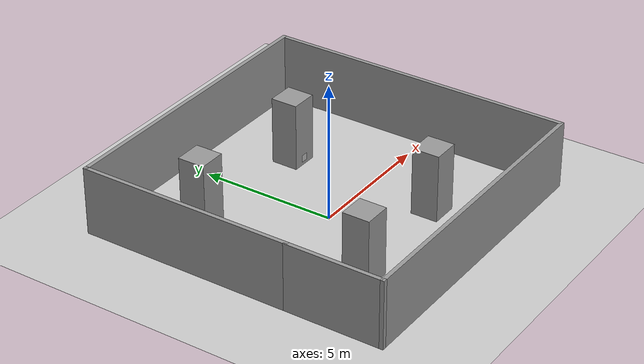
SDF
<sdf version="1.7">
 <world name="default">
  <light name="sun" type="directional">
   <pose>0 0 10 0 -0 0</pose>
   <diffuse>0.8 0.8 0.8 1</diffuse>
   <specular>0.2 0.2 0.2 1</specular>
   <attenuation>
    <range>1000</range>
    <constant>0.9</constant>
    <linear>0.01</linear>
    <quadratic>0.001</quadratic>
   </attenuation>
   <direction>-0.5 0.1 -0.9</direction>
   <spot><inner_angle>0</inner_angle><outer_angle>0</outer_angle><falloff>0</falloff></spot>
  </light>
  <model name="ground_plane">
   <static>1</static>
   <link name="link">
    <collision name="collision">
     <geometry><plane><normal>0 0 1</normal><size>100 100</size></plane></geometry>
     <surface><friction><ode><mu>100</mu><mu2>50</mu2></ode></friction></surface>
    </collision>
    <visual name="visual">
     <cast_shadows>0</cast_shadows>
     <geometry><plane><normal>0 0 1</normal><size>100 100</size></plane></geometry>
     <material>
      <script><uri>file://media/materials/scripts/gazebo.material</uri><name>Gazebo/Grey</name></script>
     </material>
    </visual>
   </link>
  </model>
  <gravity>0 0 -9.8</gravity>
  <magnetic_field>6e-06 2.3e-05 -4.2e-05</magnetic_field>
  <atmosphere type="adiabatic"/>
  <physics type="ode">
   <max_step_size>0.001</max_step_size>
   <real_time_factor>1</real_time_factor>
   <real_time_update_rate>1000</real_time_update_rate>
  </physics>
  <scene><ambient>0.4 0.4 0.4 1</ambient><background>0.7 0.7 0.7 1</background><shadows>1</shadows></scene>
  <audio><device>default</device></audio>
  <spherical_coordinates>
   <surface_model>EARTH_WGS84</surface_model>
   <latitude_deg>0</latitude_deg>
   <longitude_deg>0</longitude_deg>
   <elevation>0</elevation>
   <heading_deg>0</heading_deg>
  </spherical_coordinates>
  <model name="walls">
   <pose>0.456221 0.324952 0 0 -0 0</pose>
   <link name="Wall_0">
    <collision name="Wall_0_Collision">
     <geometry><box><size>8 0.15 2.5</size></box></geometry>
     <pose>0 0 1.25 0 -0 0</pose>
    </collision>
    <visual name="Wall_0_Visual">
     <pose>0 0 1.25 0 -0 0</pose>
     <geometry><box><size>8 0.15 2.5</size></box></geometry>
     <material>
      <script><uri>file://media/materials/scripts/gazebo.material</uri><name>Gazebo/Grey</name></script>
      <ambient>1 1 1 1</ambient>
     </material>
     <meta><layer>0</layer></meta>
    </visual>
    <pose>-5.55 1.75 0 0 -0 1.5708</pose>
   </link>
   <link name="Wall_1">
    <collision name="Wall_1_Collision">
     <geometry><box><size>11.25 0.15 2.5</size></box></geometry>
     <pose>0 0 1.25 0 -0 0</pose>
    </collision>
    <visual name="Wall_1_Visual">
     <pose>0 0 1.25 0 -0 0</pose>
     <geometry><box><size>11.25 0.15 2.5</size></box></geometry>
     <material>
      <script><uri>file://media/materials/scripts/gazebo.material</uri><name>Gazebo/Grey</name></script>
      <ambient>1 1 1 1</ambient>
     </material>
     <meta><layer>0</layer></meta>
    </visual>
    <pose>-0 5.675 0 0 -0 0</pose>
   </link>
   <link name="Wall_2">
    <collision name="Wall_2_Collision">
     <geometry><box><size>11.5 0.15 2.5</size></box></geometry>
     <pose>0 0 1.25 0 -0 0</pose>
    </collision>
    <visual name="Wall_2_Visual">
     <pose>0 0 1.25 0 -0 0</pose>
     <geometry><box><size>11.5 0.15 2.5</size></box></geometry>
     <material>
      <script><uri>file://media/materials/scripts/gazebo.material</uri><name>Gazebo/Grey</name></script>
      <ambient>1 1 1 1</ambient>
     </material>
     <meta><layer>0</layer></meta>
    </visual>
    <pose>5.55 -0 0 0 -0 -1.5708</pose>
   </link>
   <link name="Wall_3">
    <collision name="Wall_3_Collision">
     <geometry><box><size>11.25 0.15 2.5</size></box></geometry>
     <pose>0 0 1.25 0 -0 0</pose>
    </collision>
    <visual name="Wall_3_Visual">
     <pose>0 0 1.25 0 -0 0</pose>
     <geometry><box><size>11.25 0.15 2.5</size></box></geometry>
     <material>
      <script><uri>file://media/materials/scripts/gazebo.material</uri><name>Gazebo/Grey</name></script>
      <ambient>1 1 1 1</ambient>
     </material>
     <meta><layer>0</layer></meta>
    </visual>
    <pose>-0 -5.675 0 0 -0 3.14159</pose>
   </link>
   <link name="Wall_4">
    <collision name="Wall_4_Collision">
     <geometry><box><size>3.65 0.15 2.5</size></box></geometry>
     <pose>0 0 1.25 0 -0 0</pose>
    </collision>
    <visual name="Wall_4_Visual">
     <pose>0 0 1.25 0 -0 0</pose>
     <geometry><box><size>3.65 0.15 2.5</size></box></geometry>
     <material>
      <script><uri>file://media/materials/scripts/gazebo.material</uri><name>Gazebo/Grey</name></script>
      <ambient>1 1 1 1</ambient>
     </material>
     <meta><layer>0</layer></meta>
    </visual>
    <pose>-5.55 -3.925 0 0 -0 1.5708</pose>
   </link>
   <static>1</static>
  </model>
  <model name="unit_box">
   <pose>-2.46315 3.40168 1.25301 2e-06 -2e-06 0.005575</pose>
   <link name="link">
    <inertial>
     <mass>1</mass>
     <inertia>
      <ixx>0.166667</ixx>
      <ixy>0</ixy>
      <ixz>0</ixz>
      <iyy>0.166667</iyy>
      <iyz>0</iyz>
      <izz>0.166667</izz>
     </inertia>
    </inertial>
    <collision name="collision"><geometry><box><size>1 1 2.50603</size></box></geometry></collision>
    <visual name="visual">
     <geometry><box><size>1 1 2.50603</size></box></geometry>
     <material>
      <script><name>Gazebo/Grey</name><uri>file://media/materials/scripts/gazebo.material</uri></script>
     </material>
    </visual>
   </link>
  </model>
  <model name="unit_box_clone">
   <pose>2.44949 3.16416 1.25301 0 0 -0.008098</pose>
   <link name="link">
    <inertial>
     <mass>1</mass>
     <inertia>
      <ixx>0.166667</ixx>
      <ixy>0</ixy>
      <ixz>0</ixz>
      <iyy>0.166667</iyy>
      <iyz>0</iyz>
      <izz>0.166667</izz>
     </inertia>
    </inertial>
    <collision name="collision"><geometry><box><size>1 1 2.50603</size></box></geometry></collision>
    <visual name="visual">
     <geometry><box><size>1 1 2.50603</size></box></geometry>
     <material>
      <script><name>Gazebo/Grey</name><uri>file://media/materials/scripts/gazebo.material</uri></script>
     </material>
    </visual>
   </link>
  </model>
  <model name="unit_box_clone_0">
   <pose>2.29249 -2.59658 1.25301 1e-06 -1e-06 0.003052</pose>
   <link name="link">
    <inertial>
     <mass>1</mass>
     <inertia>
      <ixx>0.166667</ixx>
      <ixy>0</ixy>
      <ixz>0</ixz>
      <iyy>0.166667</iyy>
      <iyz>0</iyz>
      <izz>0.166667</izz>
     </inertia>
    </inertial>
    <collision name="collision"><geometry><box><size>1 1 2.50603</size></box></geometry></collision>
    <visual name="visual">
     <geometry><box><size>1 1 2.50603</size></box></geometry>
     <material>
      <script><name>Gazebo/Grey</name><uri>file://media/materials/scripts/gazebo.material</uri></script>
     </material>
    </visual>
   </link>
  </model>
  <model name="unit_box_clone_1">
   <pose>-2.22731 -2.82343 1.25301 -1e-06 -1e-06 -0.003598</pose>
   <link name="link">
    <inertial>
     <mass>1</mass>
     <inertia>
      <ixx>0.166667</ixx>
      <ixy>0</ixy>
      <ixz>0</ixz>
      <iyy>0.166667</iyy>
      <iyz>0</iyz>
      <izz>0.166667</izz>
     </inertia>
    </inertial>
    <collision name="collision"><geometry><box><size>1 1 2.50603</size></box></geometry></collision>
    <visual name="visual">
     <geometry><box><size>1 1 2.50603</size></box></geometry>
     <material>
      <script><name>Gazebo/Grey</name><uri>file://media/materials/scripts/gazebo.material</uri></script>
     </material>
    </visual>
   </link>
  </model>
  <model name="aruco_marker_0">
   <static>1</static>
   <link name="link">
    <inertial>
     <mass>0.001</mass>
     <inertia>
      <ixx>3.75e-06</ixx>
      <ixy>0</ixy>
      <ixz>0</ixz>
      <iyy>1.875e-06</iyy>
      <iyz>0</iyz>
      <izz>1.875e-06</izz>
     </inertia>
    </inertial>
    <visual name="front_visual">
     <pose>5e-05 0 0 0 -0 0</pose>
     <geometry><box><size>0.000174138 0.263845 0.263845</size></box></geometry>
     <material>
      <script>
       <uri>model://aruco_marker_0/materials/scripts</uri>
       <uri>model://aruco_marker_0/materials/textures</uri>
       <name>aruco_marker_0</name>
      </script>
     </material>
    </visual>
    <visual name="rear_visual">
     <pose>-5e-05 0 0 0 -0 0</pose>
     <geometry><box><size>0.000174138 0.263845 0.263845</size></box></geometry>
    </visual>
    <collision name="collision">
     <geometry><box><size>0.000174138 0.263845 0.263845</size></box></geometry>
    </collision>
   </link>
   <pose>-4.99343 0.048614 0.238247 8.9e-05 -0.025179 -0.004529</pose>
  </model>
  <model name="aruco_marker_1">
   <static>1</static>
   <link name="link">
    <inertial>
     <mass>0.001</mass>
     <inertia>
      <ixx>3.75e-06</ixx>
      <ixy>0</ixy>
      <ixz>0</ixz>
      <iyy>1.875e-06</iyy>
      <iyz>0</iyz>
      <izz>1.875e-06</izz>
     </inertia>
    </inertial>
    <visual name="front_visual">
     <pose>5e-05 0 0 0 -0 0</pose>
     <geometry><box><size>0.000173806 0.260709 0.260709</size></box></geometry>
     <material>
      <script>
       <uri>model://aruco_marker_1/materials/scripts</uri>
       <uri>model://aruco_marker_1/materials/textures</uri>
       <name>aruco_marker_1</name>
      </script>
     </material>
    </visual>
    <visual name="rear_visual">
     <pose>-5e-05 0 0 0 -0 0</pose>
     <geometry><box><size>0.000173806 0.260709 0.260709</size></box></geometry>
    </visual>
    <collision name="collision">
     <geometry><box><size>0.000173806 0.260709 0.260709</size></box></geometry>
    </collision>
   </link>
   <pose>2.42955 2.65823 0.259882 0.006729 -0.003657 -1.59007</pose>
  </model>
  <model name="aruco_marker_2">
   <static>1</static>
   <link name="link">
    <inertial>
     <mass>0.001</mass>
     <inertia>
      <ixx>3.75e-06</ixx>
      <ixy>0</ixy>
      <ixz>0</ixz>
      <iyy>1.875e-06</iyy>
      <iyz>0</iyz>
      <izz>1.875e-06</izz>
     </inertia>
    </inertial>
    <visual name="front_visual">
     <pose>5e-05 0 0 0 -0 0</pose>
     <geometry><box><size>0.000175078 0.265269 0.265269</size></box></geometry>
     <material>
      <script>
       <uri>model://aruco_marker_2/materials/scripts</uri>
       <uri>model://aruco_marker_2/materials/textures</uri>
       <name>aruco_marker_2</name>
      </script>
     </material>
    </visual>
    <visual name="rear_visual">
     <pose>-5e-05 0 0 0 -0 0</pose>
     <geometry><box><size>0.000175078 0.265269 0.265269</size></box></geometry>
    </visual>
    <collision name="collision">
     <geometry><box><size>0.000175078 0.265269 0.265269</size></box></geometry>
    </collision>
   </link>
   <pose>0.351925 -5.26615 0.217501 0.000832 -0.005065 1.55766</pose>
  </model>
  <model name="aruco_marker_3">
   <static>1</static>
   <link name="link">
    <inertial>
     <mass>0.001</mass>
     <inertia>
      <ixx>3.75e-06</ixx>
      <ixy>0</ixy>
      <ixz>0</ixz>
      <iyy>1.875e-06</iyy>
      <iyz>0</iyz>
      <izz>1.875e-06</izz>
     </inertia>
    </inertial>
    <visual name="front_visual">
     <pose>5e-05 0 0 0 -0 0</pose>
     <geometry><box><size>0.000178086 0.267129 0.267129</size></box></geometry>
     <material>
      <script>
       <uri>model://aruco_marker_3/materials/scripts</uri>
       <uri>model://aruco_marker_3/materials/textures</uri>
       <name>aruco_marker_3</name>
      </script>
     </material>
    </visual>
    <visual name="rear_visual">
     <pose>-5e-05 0 0 0 -0 0</pose>
     <geometry><box><size>0.000178086 0.267129 0.267129</size></box></geometry>
    </visual>
    <collision name="collision">
     <geometry><box><size>0.000178086 0.267129 0.267129</size></box></geometry>
    </collision>
   </link>
   <pose>0.007608 5.90298 0.262453 -0.006409 -7e-05 -1.57806</pose>
  </model>
 </world>
</sdf>
